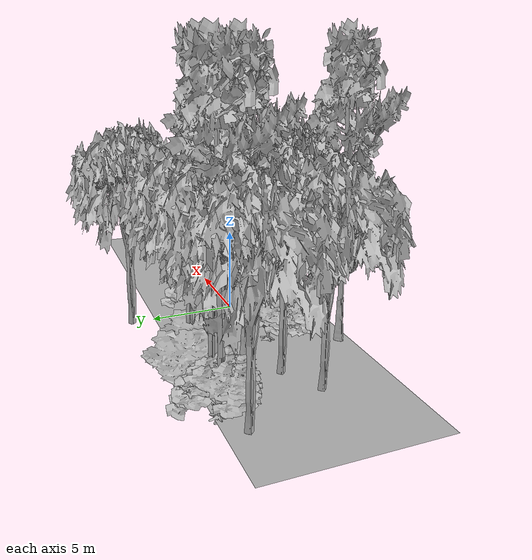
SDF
<sdf version="1.7">
 <world name="default">
  <model name="ground_plane">
   <static>1</static>
   <link name="link">
    <collision name="collision">
     <pose>-50 0 0 0 -0 0</pose>
     <geometry><plane><normal>0 0 1</normal><size>100 100</size></plane></geometry>
     <surface><contact><ode><min_depth>0.01</min_depth><max_vel>0</max_vel></ode></contact></surface>
    </collision>
    <visual name="grass">
     <cast_shadows>0</cast_shadows>
     <geometry>
      <mesh>
       <scale>0.5814285714285714 0.18142857142857144 0.1</scale>
       <uri>file://grass_plane/meshes/grass_plane.dae</uri>
      </mesh>
     </geometry>
    </visual>
   </link>
  </model>
  <model name="Tree 20">
   <static>1</static>
   <pose>-10.122272205326908 4.299424618157886 0 1.57079 -0 0</pose>
   <link name="link">
    <collision name="collision">
     <geometry><mesh><scale>4 2.5 4</scale><uri>model://tree_1/meshes/tree_1.obj</uri></mesh></geometry>
    </collision>
    <visual name="visual">
     <geometry><mesh><scale>4 2.5 4</scale><uri>model://tree_1/meshes/tree_1.obj</uri></mesh></geometry>
    </visual>
   </link>
  </model>
  <model name="Tree 57">
   <static>1</static>
   <pose>-4.404665531525616 -1.819818453909825 0 1.57079 -0 0</pose>
   <link name="link">
    <collision name="collision">
     <geometry><mesh><scale>3 2 3</scale><uri>model://tree_3/meshes/tree_3.obj</uri></mesh></geometry>
    </collision>
    <visual name="visual">
     <geometry><mesh><scale>3 2 3</scale><uri>model://tree_3/meshes/tree_3.obj</uri></mesh></geometry>
    </visual>
   </link>
  </model>
  <model name="Tree 105">
   <static>1</static>
   <pose>-3.623164502576074 -1.418156111584926 0 1.57079 -0 0</pose>
   <link name="link">
    <collision name="collision">
     <geometry><mesh><scale>3.5 5 3.5</scale><uri>model://tree_2/meshes/tree_2.obj</uri></mesh></geometry>
    </collision>
    <visual name="visual">
     <geometry><mesh><scale>3.5 5 3.5</scale><uri>model://tree_2/meshes/tree_2.obj</uri></mesh></geometry>
    </visual>
   </link>
  </model>
  <model name="Tree 170">
   <static>1</static>
   <pose>-6.187052908722386 -4.254893991170686 0 1.57079 -0 0</pose>
   <link name="link">
    <collision name="collision">
     <geometry><mesh><scale>3.5 5 3.5</scale><uri>model://tree_9/meshes/tree_9.obj</uri></mesh></geometry>
    </collision>
    <visual name="visual">
     <geometry><mesh><scale>3.5 5 3.5</scale><uri>model://tree_9/meshes/tree_9.obj</uri></mesh></geometry>
    </visual>
   </link>
  </model>
  <model name="Tree 183">
   <static>1</static>
   <pose>-7.6640467445860025 3.161824891241938 0 1.57079 -0 0</pose>
   <link name="link">
    <collision name="collision">
     <geometry><mesh><scale>3.5 5 3.5</scale><uri>model://tree_2/meshes/tree_2.obj</uri></mesh></geometry>
    </collision>
    <visual name="visual">
     <geometry><mesh><scale>3.5 5 3.5</scale><uri>model://tree_2/meshes/tree_2.obj</uri></mesh></geometry>
    </visual>
   </link>
  </model>
  <model name="Tree 186">
   <static>1</static>
   <pose>-10.568614593004526 -0.9073695276291467 0 1.57079 -0 0</pose>
   <link name="link">
    <collision name="collision">
     <geometry><mesh><scale>3.5 5 3.5</scale><uri>model://tree_2/meshes/tree_2.obj</uri></mesh></geometry>
    </collision>
    <visual name="visual">
     <geometry><mesh><scale>3.5 5 3.5</scale><uri>model://tree_2/meshes/tree_2.obj</uri></mesh></geometry>
    </visual>
   </link>
  </model>
  <model name="Tree 195">
   <static>1</static>
   <pose>-8.435822333579218 0.3271861425226401 0 1.57079 -0 0</pose>
   <link name="link">
    <collision name="collision">
     <geometry><mesh><scale>3.5 5 3.5</scale><uri>model://tree_2/meshes/tree_2.obj</uri></mesh></geometry>
    </collision>
    <visual name="visual">
     <geometry><mesh><scale>3.5 5 3.5</scale><uri>model://tree_2/meshes/tree_2.obj</uri></mesh></geometry>
    </visual>
   </link>
  </model>
  <model name="Tree 257">
   <static>1</static>
   <pose>-10.843589064135415 4.653866985880899 0 1.57079 -0 0</pose>
   <link name="link">
    <collision name="collision">
     <geometry><mesh><scale>4 2.5 4</scale><uri>model://tree_1/meshes/tree_1.obj</uri></mesh></geometry>
    </collision>
    <visual name="visual">
     <geometry><mesh><scale>4 2.5 4</scale><uri>model://tree_1/meshes/tree_1.obj</uri></mesh></geometry>
    </visual>
   </link>
  </model>
  <model name="Tree 260">
   <static>1</static>
   <pose>-10.001349294272863 4.217145679844268 0 1.57079 -0 0</pose>
   <link name="link">
    <collision name="collision">
     <geometry><mesh><scale>3.5 5 3.5</scale><uri>model://tree_9/meshes/tree_9.obj</uri></mesh></geometry>
    </collision>
    <visual name="visual">
     <geometry><mesh><scale>3.5 5 3.5</scale><uri>model://tree_9/meshes/tree_9.obj</uri></mesh></geometry>
    </visual>
   </link>
  </model>
  <model name="Tree 262">
   <static>1</static>
   <pose>-5.386164481821801 3.6874264438634476 0 1.57079 -0 0</pose>
   <link name="link">
    <collision name="collision">
     <geometry><mesh><scale>3 2 3</scale><uri>model://tree_3/meshes/tree_3.obj</uri></mesh></geometry>
    </collision>
    <visual name="visual">
     <geometry><mesh><scale>3 2 3</scale><uri>model://tree_3/meshes/tree_3.obj</uri></mesh></geometry>
    </visual>
   </link>
  </model>
  <model name="Tree 277">
   <static>1</static>
   <pose>-4.739412101948062 -0.5216797215276792 0 1.57079 -0 0</pose>
   <link name="link">
    <collision name="collision">
     <geometry><mesh><scale>4 2.5 4</scale><uri>model://tree_1/meshes/tree_1.obj</uri></mesh></geometry>
    </collision>
    <visual name="visual">
     <geometry><mesh><scale>4 2.5 4</scale><uri>model://tree_1/meshes/tree_1.obj</uri></mesh></geometry>
    </visual>
   </link>
  </model>
  <model name="Tree 296">
   <static>1</static>
   <pose>-6.878137071885128 2.6418176979321935 0 1.57079 -0 0</pose>
   <link name="link">
    <collision name="collision">
     <geometry><mesh><scale>3.5 5 3.5</scale><uri>model://tree_2/meshes/tree_2.obj</uri></mesh></geometry>
    </collision>
    <visual name="visual">
     <geometry><mesh><scale>3.5 5 3.5</scale><uri>model://tree_2/meshes/tree_2.obj</uri></mesh></geometry>
    </visual>
   </link>
  </model>
  <model name="Tree 318">
   <static>1</static>
   <pose>-8.4085789590102 4.067730344208151 0 1.57079 -0 0</pose>
   <link name="link">
    <collision name="collision">
     <geometry><mesh><scale>3.5 5 3.5</scale><uri>model://tree_2/meshes/tree_2.obj</uri></mesh></geometry>
    </collision>
    <visual name="visual">
     <geometry><mesh><scale>3.5 5 3.5</scale><uri>model://tree_2/meshes/tree_2.obj</uri></mesh></geometry>
    </visual>
   </link>
  </model>
  <model name="Tree 348">
   <static>1</static>
   <pose>0.14629481528248078 1.972762613039638 0 1.57079 -0 0</pose>
   <link name="link">
    <collision name="collision">
     <geometry><mesh><scale>4 2.5 4</scale><uri>model://tree_1/meshes/tree_1.obj</uri></mesh></geometry>
    </collision>
    <visual name="visual">
     <geometry><mesh><scale>4 2.5 4</scale><uri>model://tree_1/meshes/tree_1.obj</uri></mesh></geometry>
    </visual>
   </link>
  </model>
  <model name="Tree 370">
   <static>1</static>
   <pose>0.1844582813318496 -2.031570129687779 0 1.57079 -0 0</pose>
   <link name="link">
    <collision name="collision">
     <geometry><mesh><scale>4 2.5 4</scale><uri>model://tree_1/meshes/tree_1.obj</uri></mesh></geometry>
    </collision>
    <visual name="visual">
     <geometry><mesh><scale>4 2.5 4</scale><uri>model://tree_1/meshes/tree_1.obj</uri></mesh></geometry>
    </visual>
   </link>
  </model>
  <model name="Tree 388">
   <static>1</static>
   <pose>-3.3075257459335106 2.6155168226964136 0 1.57079 -0 0</pose>
   <link name="link">
    <collision name="collision">
     <geometry><mesh><scale>3.5 5 3.5</scale><uri>model://tree_9/meshes/tree_9.obj</uri></mesh></geometry>
    </collision>
    <visual name="visual">
     <geometry><mesh><scale>3.5 5 3.5</scale><uri>model://tree_9/meshes/tree_9.obj</uri></mesh></geometry>
    </visual>
   </link>
  </model>
  <model name="Tree 399">
   <static>1</static>
   <pose>-0.10791809097941751 6.255035527999588 0 1.57079 -0 0</pose>
   <link name="link">
    <collision name="collision">
     <geometry><mesh><scale>3.5 5 3.5</scale><uri>model://tree_2/meshes/tree_2.obj</uri></mesh></geometry>
    </collision>
    <visual name="visual">
     <geometry><mesh><scale>3.5 5 3.5</scale><uri>model://tree_2/meshes/tree_2.obj</uri></mesh></geometry>
    </visual>
   </link>
  </model>
  <model name="Tree 462">
   <static>1</static>
   <pose>-7.492764801781057 5.122982881512346 0 1.57079 -0 0</pose>
   <link name="link">
    <collision name="collision">
     <geometry><mesh><scale>3 2 3</scale><uri>model://tree_3/meshes/tree_3.obj</uri></mesh></geometry>
    </collision>
    <visual name="visual">
     <geometry><mesh><scale>3 2 3</scale><uri>model://tree_3/meshes/tree_3.obj</uri></mesh></geometry>
    </visual>
   </link>
  </model>
  <model name="Tree 466">
   <static>1</static>
   <pose>-1.972667345500824 -2.9080946977430973 0 1.57079 -0 0</pose>
   <link name="link">
    <collision name="collision">
     <geometry><mesh><scale>3.5 5 3.5</scale><uri>model://tree_2/meshes/tree_2.obj</uri></mesh></geometry>
    </collision>
    <visual name="visual">
     <geometry><mesh><scale>3.5 5 3.5</scale><uri>model://tree_2/meshes/tree_2.obj</uri></mesh></geometry>
    </visual>
   </link>
  </model>
  <model name="Tree 471">
   <static>1</static>
   <pose>-12.464695521984716 3.7545042801680957 0 1.57079 -0 0</pose>
   <link name="link">
    <collision name="collision">
     <geometry><mesh><scale>3.5 5 3.5</scale><uri>model://tree_2/meshes/tree_2.obj</uri></mesh></geometry>
    </collision>
    <visual name="visual">
     <geometry><mesh><scale>3.5 5 3.5</scale><uri>model://tree_2/meshes/tree_2.obj</uri></mesh></geometry>
    </visual>
   </link>
  </model>
  <model name="Tree 474">
   <static>1</static>
   <pose>-5.714548438034392 4.346528430731915 0 1.57079 -0 0</pose>
   <link name="link">
    <collision name="collision">
     <geometry><mesh><scale>3.5 5 3.5</scale><uri>model://tree_2/meshes/tree_2.obj</uri></mesh></geometry>
    </collision>
    <visual name="visual">
     <geometry><mesh><scale>3.5 5 3.5</scale><uri>model://tree_2/meshes/tree_2.obj</uri></mesh></geometry>
    </visual>
   </link>
  </model>
  <model name="Tree 511">
   <static>1</static>
   <pose>-6.7482424217028125 1.7406038711598661 0 1.57079 -0 0</pose>
   <link name="link">
    <collision name="collision">
     <geometry><mesh><scale>3.5 5 3.5</scale><uri>model://tree_9/meshes/tree_9.obj</uri></mesh></geometry>
    </collision>
    <visual name="visual">
     <geometry><mesh><scale>3.5 5 3.5</scale><uri>model://tree_9/meshes/tree_9.obj</uri></mesh></geometry>
    </visual>
   </link>
  </model>
  <model name="Tree 536">
   <static>1</static>
   <pose>-0.5239468040514765 1.8091039670316498 0 1.57079 -0 0</pose>
   <link name="link">
    <collision name="collision">
     <geometry><mesh><scale>3.5 5 3.5</scale><uri>model://tree_2/meshes/tree_2.obj</uri></mesh></geometry>
    </collision>
    <visual name="visual">
     <geometry><mesh><scale>3.5 5 3.5</scale><uri>model://tree_2/meshes/tree_2.obj</uri></mesh></geometry>
    </visual>
   </link>
  </model>
 </world>
</sdf>
